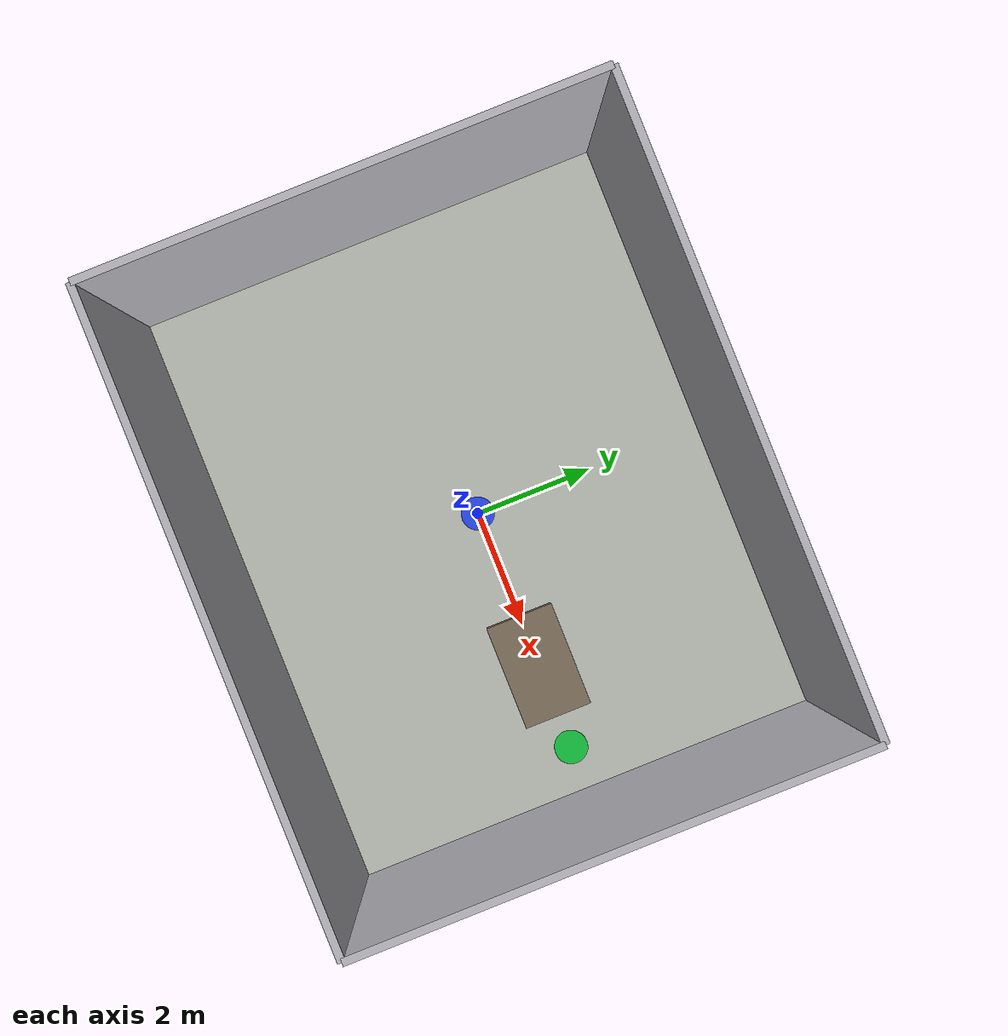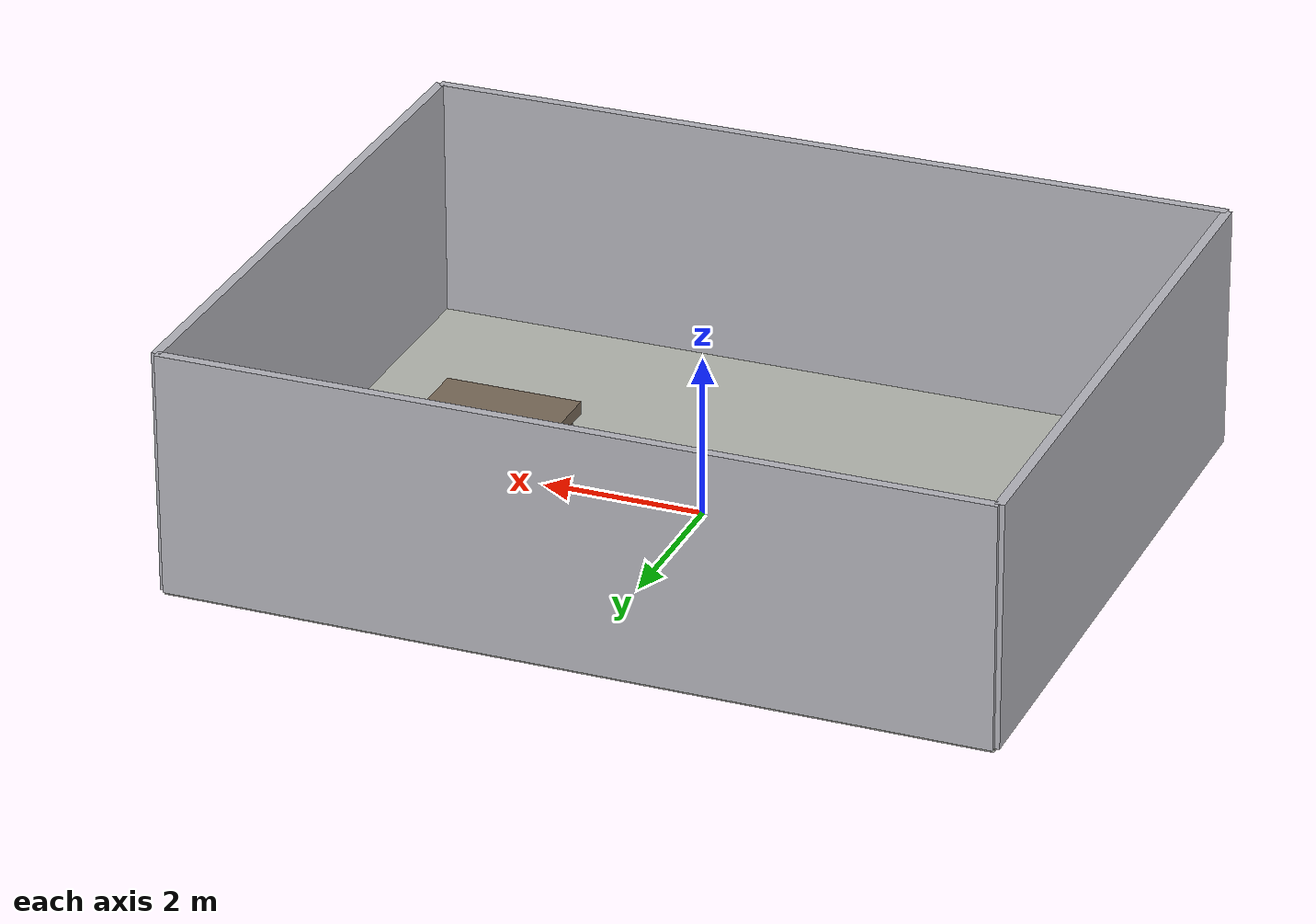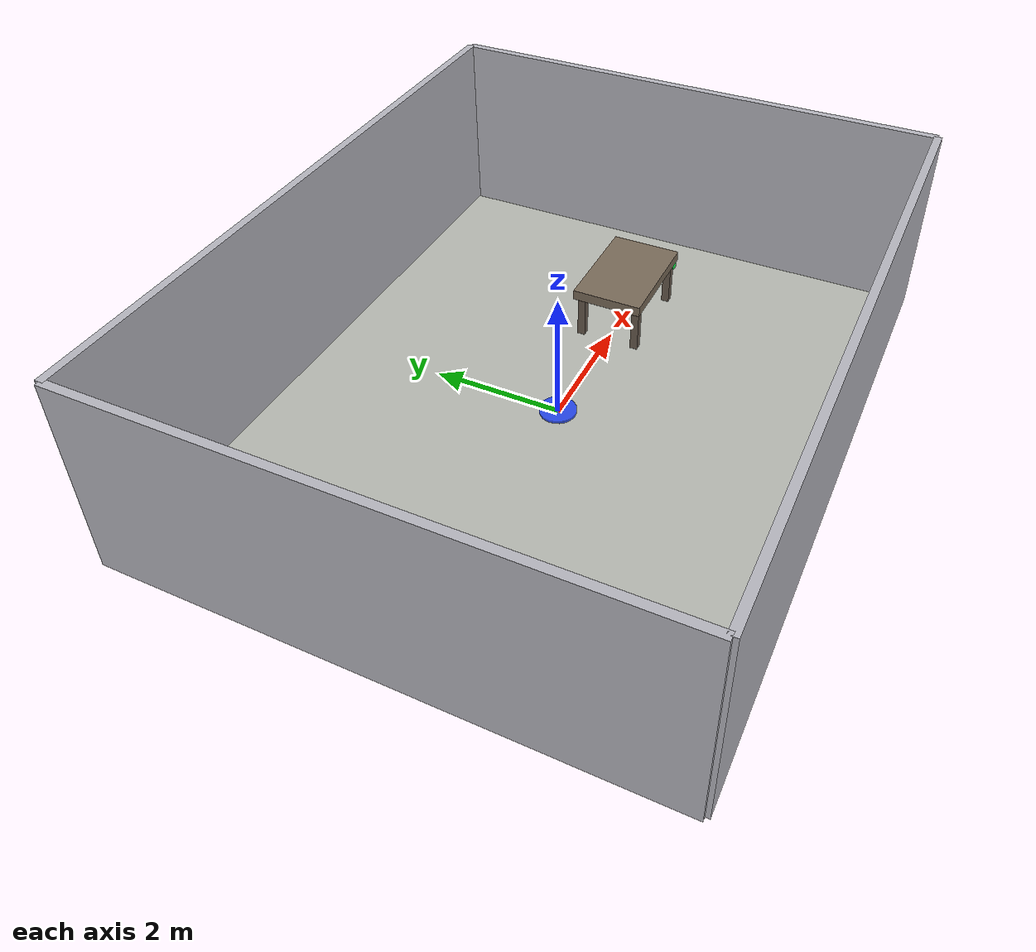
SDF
<sdf version="1.9">
 <world name="S4_table_or_low_obstacle">
  <physics name="1ms" type="ignore">
   <max_step_size>0.001</max_step_size>
   <real_time_factor>1.0</real_time_factor>
  </physics>
  <plugin filename="gz-sim-physics-system" name="gz::sim::systems::Physics"/>
  <plugin filename="gz-sim-sensors-system" name="gz::sim::systems::Sensors">
   <render_engine>ogre2</render_engine>
  </plugin>
  <plugin filename="gz-sim-user-commands-system" name="gz::sim::systems::UserCommands"/>
  <plugin filename="gz-sim-scene-broadcaster-system" name="gz::sim::systems::SceneBroadcaster"/>
  <plugin filename="gz-sim-imu-system" name="gz::sim::systems::Imu"/>
  <plugin filename="gz-sim-navsat-system" name="gz::sim::systems::NavSat"/>
  <scene><ambient>0.85 0.85 0.85</ambient><background>0.78 0.80 0.82</background><grid>false</grid></scene>
  <spherical_coordinates>
   <latitude_deg>-35.363262</latitude_deg>
   <longitude_deg>149.165237</longitude_deg>
   <elevation>584</elevation>
   <heading_deg>0</heading_deg>
   <surface_model>EARTH_WGS84</surface_model>
  </spherical_coordinates>
  <light type="directional" name="sun">
   <pose>0 0 8 0 0 0</pose>
   <diffuse>0.8 0.8 0.8 1</diffuse>
   <specular>0.3 0.3 0.3 1</specular>
   <attenuation>
    <range>1000</range>
    <constant>0.9</constant>
    <linear>0.01</linear>
    <quadratic>0.001</quadratic>
   </attenuation>
   <direction>-0.5 0.1 -0.9</direction>
  </light>
  <model name="l2_start_marker">
   <static>true</static>
   <pose>0.000 0.000 0.030 0 0 0</pose>
   <link name="link">
    <visual name="visual">
     <geometry><cylinder><radius>0.28</radius><length>0.04</length></cylinder></geometry>
     <material>
      <ambient>0.1 0.25 1.0 0.85</ambient>
      <diffuse>0.1 0.25 1.0 0.85</diffuse>
      <specular>0.25 0.25 0.25 1</specular>
     </material>
    </visual>
   </link>
  </model>
  <model name="l2_goal_marker">
   <static>true</static>
   <pose>4.200 0.000 0.030 0 0 0</pose>
   <link name="link">
    <visual name="visual">
     <geometry><cylinder><radius>0.28</radius><length>0.04</length></cylinder></geometry>
     <material>
      <ambient>0.0 0.8 0.2 0.85</ambient>
      <diffuse>0.0 0.8 0.2 0.85</diffuse>
      <specular>0.25 0.25 0.25 1</specular>
     </material>
    </visual>
   </link>
  </model>
  <model name="l2_floor">
   <static>true</static>
   <pose>0.000 0.000 -0.025 0 0 0</pose>
   <link name="link">
    <collision name="collision"><geometry><box><size>10.000 8.000 0.050</size></box></geometry></collision>
    <visual name="visual">
     <geometry><box><size>10.000 8.000 0.050</size></box></geometry>
     <material>
      <ambient>0.72 0.73 0.70 1</ambient>
      <diffuse>0.72 0.73 0.70 1</diffuse>
      <specular>0.25 0.25 0.25 1</specular>
     </material>
    </visual>
   </link>
  </model>
  <model name="l2_wall_x_positive">
   <static>true</static>
   <pose>5.000 0.000 1.500 0 0 0</pose>
   <link name="link">
    <collision name="collision"><geometry><box><size>0.120 8.000 3.000</size></box></geometry></collision>
    <visual name="visual">
     <geometry><box><size>0.120 8.000 3.000</size></box></geometry>
     <material>
      <ambient>0.72 0.72 0.75 1</ambient>
      <diffuse>0.72 0.72 0.75 1</diffuse>
      <specular>0.25 0.25 0.25 1</specular>
     </material>
    </visual>
   </link>
  </model>
  <model name="l2_wall_x_negative">
   <static>true</static>
   <pose>-5.000 0.000 1.500 0 0 0</pose>
   <link name="link">
    <collision name="collision"><geometry><box><size>0.120 8.000 3.000</size></box></geometry></collision>
    <visual name="visual">
     <geometry><box><size>0.120 8.000 3.000</size></box></geometry>
     <material>
      <ambient>0.72 0.72 0.75 1</ambient>
      <diffuse>0.72 0.72 0.75 1</diffuse>
      <specular>0.25 0.25 0.25 1</specular>
     </material>
    </visual>
   </link>
  </model>
  <model name="l2_wall_y_positive">
   <static>true</static>
   <pose>0.000 4.000 1.500 0 0 0</pose>
   <link name="link">
    <collision name="collision"><geometry><box><size>10.000 0.120 3.000</size></box></geometry></collision>
    <visual name="visual">
     <geometry><box><size>10.000 0.120 3.000</size></box></geometry>
     <material>
      <ambient>0.72 0.72 0.75 1</ambient>
      <diffuse>0.72 0.72 0.75 1</diffuse>
      <specular>0.25 0.25 0.25 1</specular>
     </material>
    </visual>
   </link>
  </model>
  <model name="l2_wall_y_negative">
   <static>true</static>
   <pose>0.000 -4.000 1.500 0 0 0</pose>
   <link name="link">
    <collision name="collision"><geometry><box><size>10.000 0.120 3.000</size></box></geometry></collision>
    <visual name="visual">
     <geometry><box><size>10.000 0.120 3.000</size></box></geometry>
     <material>
      <ambient>0.72 0.72 0.75 1</ambient>
      <diffuse>0.72 0.72 0.75 1</diffuse>
      <specular>0.25 0.25 0.25 1</specular>
     </material>
    </visual>
   </link>
  </model>
  <model name="low_table_top">
   <static>true</static>
   <pose>2.600 0.000 0.800 0 0 0</pose>
   <link name="link">
    <collision name="collision"><geometry><box><size>1.700 1.100 0.160</size></box></geometry></collision>
    <visual name="visual">
     <geometry><box><size>1.700 1.100 0.160</size></box></geometry>
     <material>
      <ambient>0.48 0.42 0.35 1</ambient>
      <diffuse>0.48 0.42 0.35 1</diffuse>
      <specular>0.25 0.25 0.25 1</specular>
     </material>
    </visual>
   </link>
  </model>
  <model name="low_table_leg_1">
   <static>true</static>
   <pose>1.900 0.450 0.400 0 0 0</pose>
   <link name="link">
    <collision name="collision"><geometry><box><size>0.120 0.120 0.800</size></box></geometry></collision>
    <visual name="visual">
     <geometry><box><size>0.120 0.120 0.800</size></box></geometry>
     <material>
      <ambient>0.40 0.35 0.30 1</ambient>
      <diffuse>0.40 0.35 0.30 1</diffuse>
      <specular>0.25 0.25 0.25 1</specular>
     </material>
    </visual>
   </link>
  </model>
  <model name="low_table_leg_2">
   <static>true</static>
   <pose>3.300 0.450 0.400 0 0 0</pose>
   <link name="link">
    <collision name="collision"><geometry><box><size>0.120 0.120 0.800</size></box></geometry></collision>
    <visual name="visual">
     <geometry><box><size>0.120 0.120 0.800</size></box></geometry>
     <material>
      <ambient>0.40 0.35 0.30 1</ambient>
      <diffuse>0.40 0.35 0.30 1</diffuse>
      <specular>0.25 0.25 0.25 1</specular>
     </material>
    </visual>
   </link>
  </model>
  <model name="low_table_leg_3">
   <static>true</static>
   <pose>1.900 -0.450 0.400 0 0 0</pose>
   <link name="link">
    <collision name="collision"><geometry><box><size>0.120 0.120 0.800</size></box></geometry></collision>
    <visual name="visual">
     <geometry><box><size>0.120 0.120 0.800</size></box></geometry>
     <material>
      <ambient>0.40 0.35 0.30 1</ambient>
      <diffuse>0.40 0.35 0.30 1</diffuse>
      <specular>0.25 0.25 0.25 1</specular>
     </material>
    </visual>
   </link>
  </model>
  <model name="low_table_leg_4">
   <static>true</static>
   <pose>3.300 -0.450 0.400 0 0 0</pose>
   <link name="link">
    <collision name="collision"><geometry><box><size>0.120 0.120 0.800</size></box></geometry></collision>
    <visual name="visual">
     <geometry><box><size>0.120 0.120 0.800</size></box></geometry>
     <material>
      <ambient>0.40 0.35 0.30 1</ambient>
      <diffuse>0.40 0.35 0.30 1</diffuse>
      <specular>0.25 0.25 0.25 1</specular>
     </material>
    </visual>
   </link>
  </model>
 </world>
</sdf>
